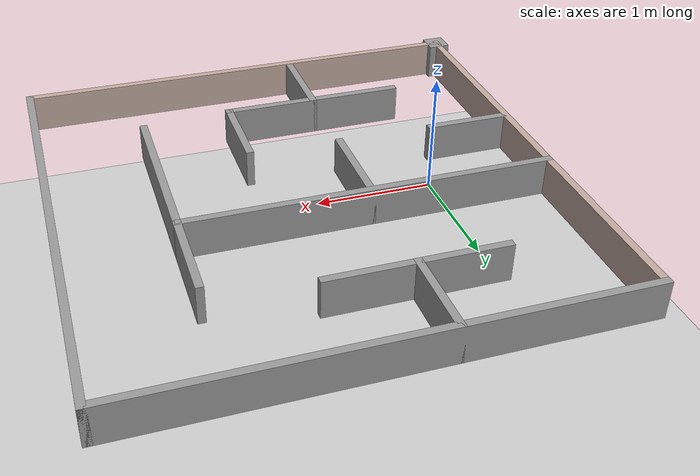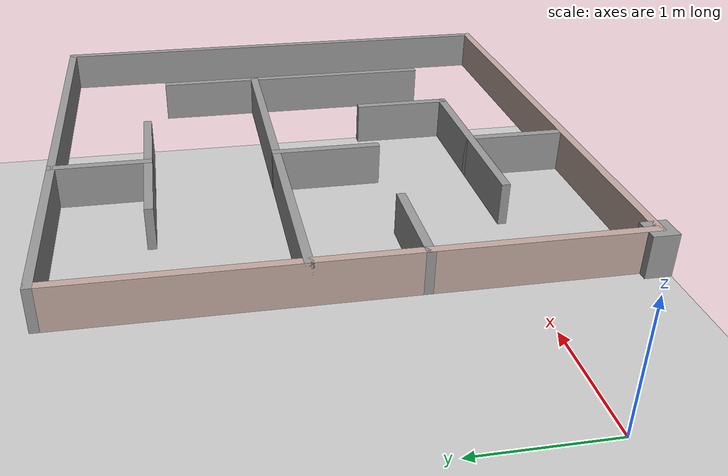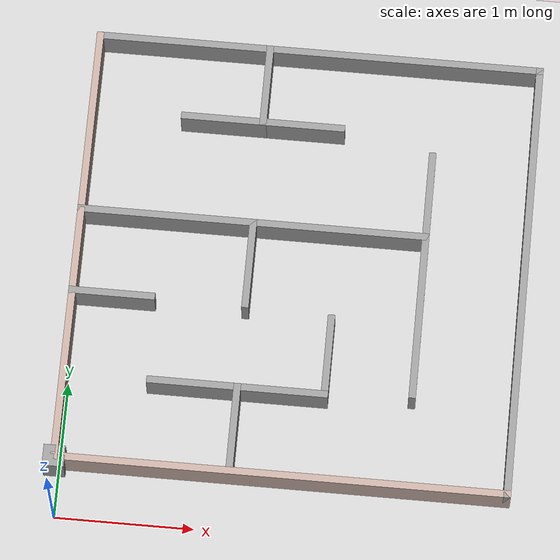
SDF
<sdf version="1.7">
 <world name="default">
  <light name="sun" type="directional">
   <pose>0 0 10 0 -0 0</pose>
   <diffuse>0.8 0.8 0.8 1</diffuse>
   <specular>0.2 0.2 0.2 1</specular>
   <attenuation>
    <range>1000</range>
    <constant>0.9</constant>
    <linear>0.01</linear>
    <quadratic>0.001</quadratic>
   </attenuation>
   <direction>-0.5 0.1 -0.9</direction>
   <spot><inner_angle>0</inner_angle><outer_angle>0</outer_angle><falloff>0</falloff></spot>
  </light>
  <model name="ground_plane">
   <static>1</static>
   <link name="link">
    <collision name="collision">
     <geometry><plane><normal>0 0 1</normal><size>100 100</size></plane></geometry>
     <surface><friction><ode><mu>100</mu><mu2>50</mu2></ode></friction></surface>
    </collision>
    <visual name="visual">
     <cast_shadows>0</cast_shadows>
     <geometry><plane><normal>0 0 1</normal><size>100 100</size></plane></geometry>
     <material>
      <script><uri>file://media/materials/scripts/gazebo.material</uri><name>Gazebo/Grey</name></script>
     </material>
    </visual>
   </link>
  </model>
  <gravity>0 0 -9.8</gravity>
  <magnetic_field>6e-06 2.3e-05 -4.2e-05</magnetic_field>
  <atmosphere type="adiabatic"/>
  <physics type="ode">
   <max_step_size>0.001</max_step_size>
   <real_time_factor>1</real_time_factor>
   <real_time_update_rate>1000</real_time_update_rate>
  </physics>
  <scene><ambient>0.4 0.4 0.4 1</ambient><background>0.7 0.7 0.7 1</background><shadows>1</shadows></scene>
  <audio><device>default</device></audio>
  <spherical_coordinates>
   <surface_model>EARTH_WGS84</surface_model>
   <latitude_deg>0</latitude_deg>
   <longitude_deg>0</longitude_deg>
   <elevation>0</elevation>
   <heading_deg>0</heading_deg>
  </spherical_coordinates>
  <model name="modulo3_world">
   <pose>1.58833 1.57895 0 0 -0 0</pose>
   <link name="Wall_0">
    <collision name="Wall_0_Collision">
     <geometry><box><size>3.15 0.05 0.25</size></box></geometry>
     <pose>0 0 1.25 0 -0 0</pose>
    </collision>
    <visual name="Wall_0_Visual">
     <pose>0 0 1.25 0 -0 0</pose>
     <geometry><box><size>3.15 0.05 0.25</size></box></geometry>
     <material>
      <script><uri>file://media/materials/scripts/gazebo.material</uri><name>Gazebo/Grey</name></script>
      <ambient>0.760784 0.662745 0.627451 1</ambient>
     </material>
     <meta><layer>0</layer></meta>
    </visual>
    <pose>0.024899 -1.525 0 0 -0 0</pose>
   </link>
   <link name="Wall_12">
    <collision name="Wall_12_Collision">
     <geometry><box><size>0.6 0.05 0.25</size></box></geometry>
     <pose>0 0 1.25 0 -0 0</pose>
    </collision>
    <visual name="Wall_12_Visual">
     <pose>0 0 1.25 0 -0 0</pose>
     <geometry><box><size>0.6 0.05 0.25</size></box></geometry>
     <material>
      <script><uri>file://media/materials/scripts/gazebo.material</uri><name>Gazebo/Grey</name></script>
      <ambient>1 1 1 1</ambient>
     </material>
     <meta><layer>0</layer></meta>
    </visual>
    <pose>-0.325101 1.3 0 0 -0 -1.5708</pose>
   </link>
   <link name="Wall_16">
    <collision name="Wall_16_Collision">
     <geometry><box><size>0.6 0.05 0.25</size></box></geometry>
     <pose>0 0 1.25 0 -0 0</pose>
    </collision>
    <visual name="Wall_16_Visual">
     <pose>0 0 1.25 0 -0 0</pose>
     <geometry><box><size>0.6 0.05 0.25</size></box></geometry>
     <material>
      <script><uri>file://media/materials/scripts/gazebo.material</uri><name>Gazebo/Grey</name></script>
      <ambient>1 1 1 1</ambient>
     </material>
     <meta><layer>0</layer></meta>
    </visual>
    <pose>-0.050101 1.025 0 0 -0 0</pose>
   </link>
   <link name="Wall_18">
    <collision name="Wall_18_Collision">
     <geometry><box><size>0.6 0.05 0.25</size></box></geometry>
     <pose>0 0 1.25 0 -0 0</pose>
    </collision>
    <visual name="Wall_18_Visual">
     <pose>0 0 1.25 0 -0 0</pose>
     <geometry><box><size>0.6 0.05 0.25</size></box></geometry>
     <material>
      <script><uri>file://media/materials/scripts/gazebo.material</uri><name>Gazebo/Grey</name></script>
      <ambient>1 1 1 1</ambient>
     </material>
     <meta><layer>0</layer></meta>
    </visual>
    <pose>-0.600101 1.025 0 0 -0 3.14159</pose>
   </link>
   <link name="Wall_20">
    <collision name="Wall_20_Collision">
     <geometry><box><size>2.45 0.05 0.25</size></box></geometry>
     <pose>0 0 1.25 0 -0 0</pose>
    </collision>
    <visual name="Wall_20_Visual">
     <pose>0 0 1.25 0 -0 0</pose>
     <geometry><box><size>2.45 0.05 0.25</size></box></geometry>
     <material>
      <script><uri>file://media/materials/scripts/gazebo.material</uri><name>Gazebo/Grey</name></script>
      <ambient>1 1 1 1</ambient>
     </material>
     <meta><layer>0</layer></meta>
    </visual>
    <pose>-0.325101 0.275 0 0 -0 0</pose>
   </link>
   <link name="Wall_22">
    <collision name="Wall_22_Collision">
     <geometry><box><size>0.65 0.05 0.25</size></box></geometry>
     <pose>0 0 1.25 0 -0 0</pose>
    </collision>
    <visual name="Wall_22_Visual">
     <pose>0 0 1.25 0 -0 0</pose>
     <geometry><box><size>0.65 0.05 0.25</size></box></geometry>
     <material>
      <script><uri>file://media/materials/scripts/gazebo.material</uri><name>Gazebo/Grey</name></script>
      <ambient>1 1 1 1</ambient>
     </material>
     <meta><layer>0</layer></meta>
    </visual>
    <pose>0.874899 0.575 0 0 -0 1.5708</pose>
   </link>
   <link name="Wall_24">
    <collision name="Wall_24_Collision">
     <geometry><box><size>1.2 0.05 0.25</size></box></geometry>
     <pose>0 0 1.25 0 -0 0</pose>
    </collision>
    <visual name="Wall_24_Visual">
     <pose>0 0 1.25 0 -0 0</pose>
     <geometry><box><size>1.2 0.05 0.25</size></box></geometry>
     <material>
      <script><uri>file://media/materials/scripts/gazebo.material</uri><name>Gazebo/Grey</name></script>
      <ambient>1 1 1 1</ambient>
     </material>
     <meta><layer>0</layer></meta>
    </visual>
    <pose>0.874899 -0.3 0 0 -0 -1.5708</pose>
   </link>
   <link name="Wall_26">
    <collision name="Wall_26_Collision">
     <geometry><box><size>0.6 0.05 0.25</size></box></geometry>
     <pose>0 0 1.25 0 -0 0</pose>
    </collision>
    <visual name="Wall_26_Visual">
     <pose>0 0 1.25 0 -0 0</pose>
     <geometry><box><size>0.6 0.05 0.25</size></box></geometry>
     <material>
      <script><uri>file://media/materials/scripts/gazebo.material</uri><name>Gazebo/Grey</name></script>
      <ambient>1 1 1 1</ambient>
     </material>
     <meta><layer>0</layer></meta>
    </visual>
    <pose>-1.2501 -0.325 0 0 -0 0</pose>
   </link>
   <link name="Wall_3">
    <collision name="Wall_3_Collision">
     <geometry><box><size>0.15 0.15 0.25</size></box></geometry>
     <pose>0 0 1.25 0 -0 0</pose>
    </collision>
    <visual name="Wall_3_Visual">
     <pose>0 0 1.25 0 -0 0</pose>
     <geometry><box><size>0.15 0.15 0.25</size></box></geometry>
     <material>
      <script><uri>file://media/materials/scripts/gazebo.material</uri><name>Gazebo/Grey</name></script>
      <ambient>1 1 1 1</ambient>
     </material>
     <meta><layer>0</layer></meta>
    </visual>
    <pose>-1.5251 -1.525 0 0 -0 0</pose>
   </link>
   <link name="Wall_30">
    <collision name="Wall_30_Collision">
     <geometry><box><size>0.6 0.05 0.25</size></box></geometry>
     <pose>0 0 1.25 0 -0 0</pose>
    </collision>
    <visual name="Wall_30_Visual">
     <pose>0 0 1.25 0 -0 0</pose>
     <geometry><box><size>0.6 0.05 0.25</size></box></geometry>
     <material>
      <script><uri>file://media/materials/scripts/gazebo.material</uri><name>Gazebo/Grey</name></script>
      <ambient>1 1 1 1</ambient>
     </material>
     <meta><layer>0</layer></meta>
    </visual>
    <pose>-0.325101 -1.2 0 0 -0 -1.5708</pose>
   </link>
   <link name="Wall_32">
    <collision name="Wall_32_Collision">
     <geometry><box><size>1.25 0.05 0.25</size></box></geometry>
     <pose>0 0 1.25 0 -0 0</pose>
    </collision>
    <visual name="Wall_32_Visual">
     <pose>0 0 1.25 0 -0 0</pose>
     <geometry><box><size>1.25 0.05 0.25</size></box></geometry>
     <material>
      <script><uri>file://media/materials/scripts/gazebo.material</uri><name>Gazebo/Grey</name></script>
      <ambient>1 1 1 1</ambient>
     </material>
     <meta><layer>0</layer></meta>
    </visual>
    <pose>-0.325101 -0.925 0 0 -0 0</pose>
   </link>
   <link name="Wall_34">
    <collision name="Wall_34_Collision">
     <geometry><box><size>0.6 0.05 0.25</size></box></geometry>
     <pose>0 0 1.25 0 -0 0</pose>
    </collision>
    <visual name="Wall_34_Visual">
     <pose>0 0 1.25 0 -0 0</pose>
     <geometry><box><size>0.6 0.05 0.25</size></box></geometry>
     <material>
      <script><uri>file://media/materials/scripts/gazebo.material</uri><name>Gazebo/Grey</name></script>
      <ambient>1 1 1 1</ambient>
     </material>
     <meta><layer>0</layer></meta>
    </visual>
    <pose>0.274899 -0.65 0 0 -0 1.5708</pose>
   </link>
   <link name="Wall_36">
    <collision name="Wall_36_Collision">
     <geometry><box><size>0.65 0.05 0.25</size></box></geometry>
     <pose>0 0 1.25 0 -0 0</pose>
    </collision>
    <visual name="Wall_36_Visual">
     <pose>0 0 1.25 0 -0 0</pose>
     <geometry><box><size>0.65 0.05 0.25</size></box></geometry>
     <material>
      <script><uri>file://media/materials/scripts/gazebo.material</uri><name>Gazebo/Grey</name></script>
      <ambient>1 1 1 1</ambient>
     </material>
     <meta><layer>0</layer></meta>
    </visual>
    <pose>-0.325101 -0.025 0 0 -0 -1.5708</pose>
   </link>
   <link name="Wall_5">
    <collision name="Wall_5_Collision">
     <geometry><box><size>3.15 0.05 0.25</size></box></geometry>
     <pose>0 0 1.25 0 -0 0</pose>
    </collision>
    <visual name="Wall_5_Visual">
     <pose>0 0 1.25 0 -0 0</pose>
     <geometry><box><size>3.15 0.05 0.25</size></box></geometry>
     <material>
      <script><uri>file://media/materials/scripts/gazebo.material</uri><name>Gazebo/Grey</name></script>
      <ambient>0.760784 0.662745 0.627451 1</ambient>
     </material>
     <meta><layer>0</layer></meta>
    </visual>
    <pose>-1.5251 0.025 0 0 -0 1.5708</pose>
   </link>
   <link name="Wall_7">
    <collision name="Wall_7_Collision">
     <geometry><box><size>3.1504 0.05 0.25</size></box></geometry>
     <pose>0 0 1.25 0 -0 0</pose>
    </collision>
    <visual name="Wall_7_Visual">
     <pose>0 0 1.25 0 -0 0</pose>
     <geometry><box><size>3.1504 0.05 0.25</size></box></geometry>
     <material>
      <script><uri>file://media/materials/scripts/gazebo.material</uri><name>Gazebo/Grey</name></script>
      <ambient>1 1 1 1</ambient>
     </material>
     <meta><layer>0</layer></meta>
    </visual>
    <pose>0.024899 1.575 0 0 -0 0</pose>
   </link>
   <link name="Wall_9">
    <collision name="Wall_9_Collision">
     <geometry><box><size>3.15 0.05 0.25</size></box></geometry>
     <pose>0 0 1.25 0 -0 0</pose>
    </collision>
    <visual name="Wall_9_Visual">
     <pose>0 0 1.25 0 -0 0</pose>
     <geometry><box><size>3.15 0.05 0.25</size></box></geometry>
     <material>
      <script><uri>file://media/materials/scripts/gazebo.material</uri><name>Gazebo/Grey</name></script>
      <ambient>1 1 1 1</ambient>
     </material>
     <meta><layer>0</layer></meta>
    </visual>
    <pose>1.5749 0.025 0 0 -0 1.5708</pose>
   </link>
   <static>1</static>
  </model>
 </world>
</sdf>
